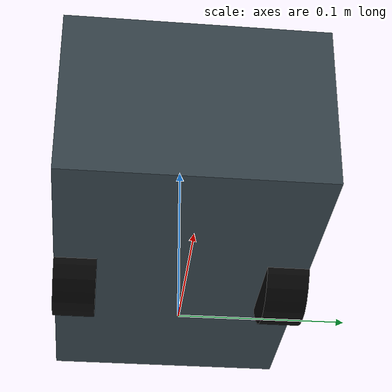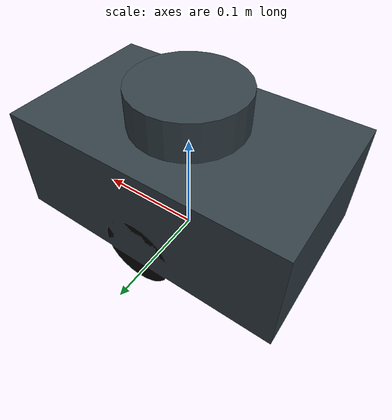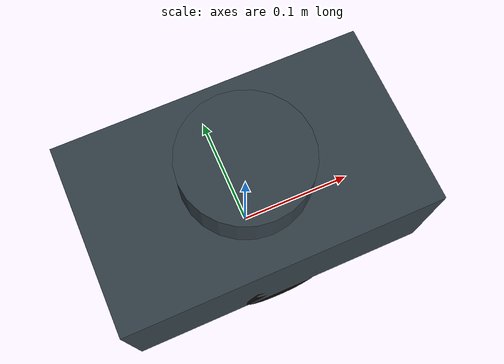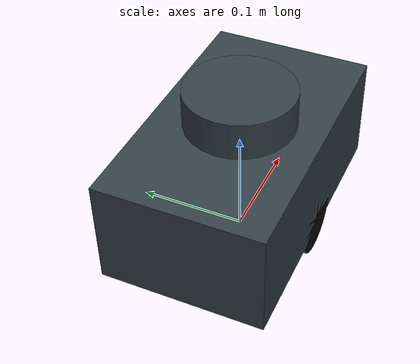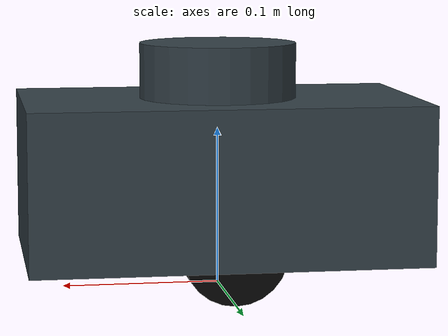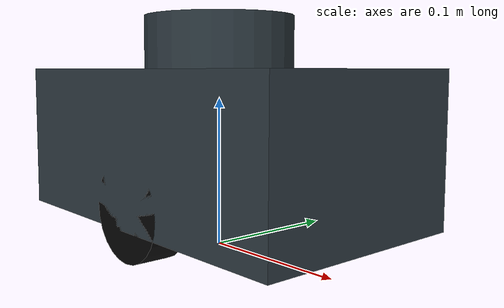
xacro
<?xml version="1.0"?>
<robot xmlns:xacro="http://www.ros.org/wiki/xacro" name="mycar">
  <xacro:arg name="serial_port" default="/dev/ttyUSB0"/>
  <xacro:arg name="baud_rate" default="115200"/>
  <xacro:arg name="max_rpm" default="120.0"/>

  <!-- 几何量单位m；必须与controllers.yaml中的轮半径、轮距一致。 -->
  <xacro:property name="wheel_radius" value="0.0325"/>
  <xacro:property name="wheel_width" value="0.025"/>
  <xacro:property name="wheel_separation" value="0.125"/>

  <material name="body_gray"><color rgba="0.2 0.25 0.28 1"/></material>
  <material name="wheel_black"><color rgba="0.03 0.03 0.03 1"/></material>

  <link name="base_link">
    <visual>
      <origin xyz="0 0 0.07"/>
      <geometry><box size="0.25 0.15 0.10"/></geometry>
      <material name="body_gray"/>
    </visual>
    <collision>
      <origin xyz="0 0 0.07"/>
      <geometry><box size="0.25 0.15 0.10"/></geometry>
    </collision>
    <inertial>
      <origin xyz="0 0 0.07"/>
      <mass value="2.0"/>
      <inertia ixx="0.0054" ixy="0" ixz="0" iyy="0.0121" iyz="0" izz="0.0133"/>
    </inertial>
  </link>

  <xacro:macro name="wheel" params="side y sign">
    <link name="${side}_wheel_link">
      <visual>
        <origin rpy="1.570796 0 0"/>
        <geometry><cylinder radius="${wheel_radius}" length="${wheel_width}"/></geometry>
        <material name="wheel_black"/>
      </visual>
      <collision>
        <origin rpy="1.570796 0 0"/>
        <geometry><cylinder radius="${wheel_radius}" length="${wheel_width}"/></geometry>
      </collision>
      <inertial>
        <mass value="0.10"/>
        <inertia ixx="0.00003" ixy="0" ixz="0" iyy="0.00005" iyz="0" izz="0.00003"/>
      </inertial>
    </link>
    <joint name="${side}_wheel_joint" type="continuous">
      <parent link="base_link"/>
      <child link="${side}_wheel_link"/>
      <origin xyz="0 ${y} ${wheel_radius}"/>
      <axis xyz="0 ${sign} 0"/>
    </joint>
  </xacro:macro>

  <xacro:wheel side="left" y="${wheel_separation / 2.0}" sign="1"/>
  <xacro:wheel side="right" y="${-wheel_separation / 2.0}" sign="1"/>

  <link name="laser">
    <visual>
      <geometry><cylinder radius="0.05" length="0.07"/></geometry>
      <material name="body_gray"/>
    </visual>
  </link>
  <!-- xyz/rpy描述父坐标系到传感器坐标系的固定安装关系，不是传感器滤波参数。 -->
  <joint name="laser_joint" type="fixed">
    <parent link="base_link"/>
    <child link="laser"/>
    <origin xyz="0 0 0.12"/>
  </joint>

  <!-- IMU的安装位置和姿态需按实车修改，坐标轴：x右、y后、z下。 -->
  <link name="imu_tracking"/>
  <joint name="imu_tracking_joint" type="fixed">
    <parent link="base_link"/>
    <child link="imu_tracking"/>
    <origin xyz="0 0 0"/>
  </joint>
  <link name="imu_link"/>
  <joint name="imu_joint" type="fixed">
    <parent link="imu_tracking"/>
    <child link="imu_link"/>
    <origin xyz="0 0 0" rpy="3.1415926536 0 -1.5707963268"/>
  </joint>

  <!-- 相机相对base_link：前5cm、居中、上2cm，镜头水平朝前。 -->
  <!-- camera_link使用x前y左z上；光学坐标转换由相机SDK提供。 -->
  <link name="camera_link"/>
  <joint name="camera_joint" type="fixed">
    <parent link="base_link"/>
    <child link="camera_link"/>
    <origin xyz="0.10 0 0.02" rpy="0 0 0"/>
  </joint>

  <!-- 插件名由mycar_hardware.xml注册；接口position(rad)、velocity(rad/s)。 -->
  <ros2_control name="MyCarSystem" type="system">
    <hardware>
      <plugin>mycar_base/MyCarSystem</plugin>
      <param name="serial_port">$(arg serial_port)</param>
      <param name="baud_rate">$(arg baud_rate)</param>
      <!-- RPM控速在STM32完成，真实编码器计数回传ROS计算里程计。 -->
      <param name="max_rpm">$(arg max_rpm)</param>
      <param name="encoder_cpr">1468.2</param>
      <param name="feedback_timeout_ms">500</param>
    </hardware>
    <joint name="left_wheel_joint">
      <command_interface name="velocity"/>
      <state_interface name="position"/>
      <state_interface name="velocity"/>
    </joint>
    <joint name="right_wheel_joint">
      <command_interface name="velocity"/>
      <state_interface name="position"/>
      <state_interface name="velocity"/>
    </joint>
  </ros2_control>
</robot>
